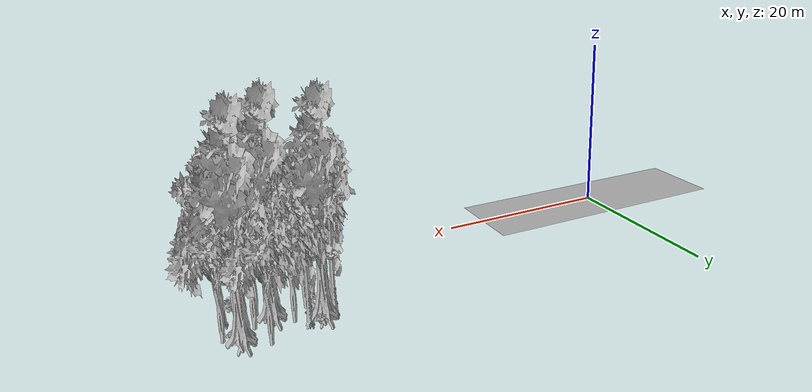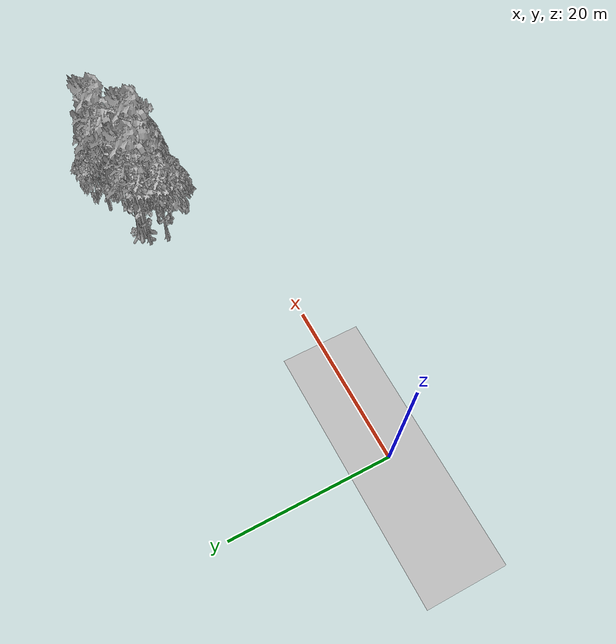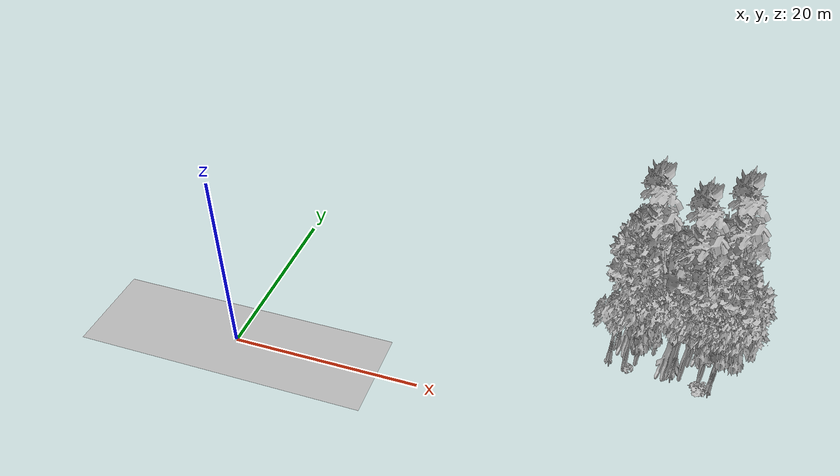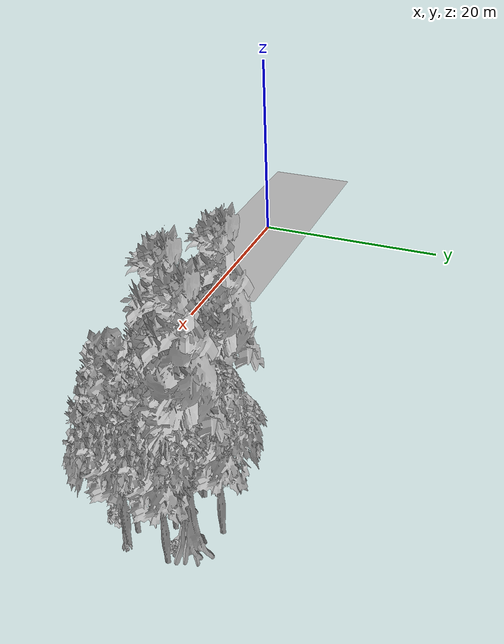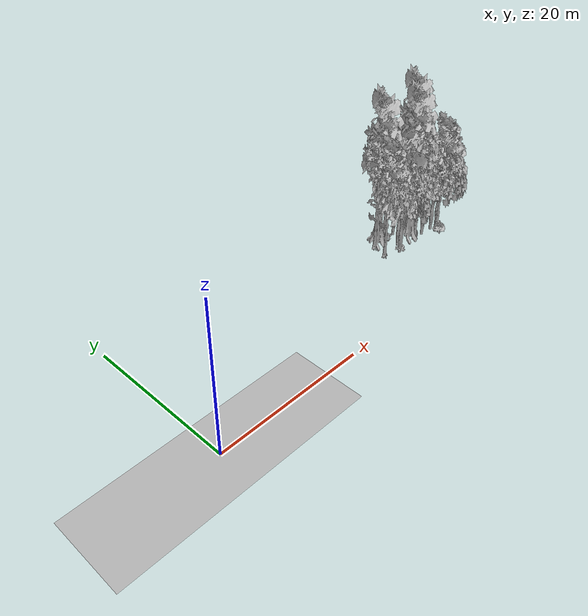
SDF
<sdf version="1.7">
 <world name="default">
  <model name="ground_plane">
   <static>1</static>
   <link name="link">
    <collision name="collision">
     <geometry><plane><normal>0 0 1</normal><size>100 100</size></plane></geometry>
     <surface><contact><ode><min_depth>0.01</min_depth><max_vel>0</max_vel></ode></contact></surface>
    </collision>
    <visual name="grass">
     <cast_shadows>0</cast_shadows>
     <geometry>
      <mesh>
       <scale>0.5814285714285714 0.18142857142857144 0.1</scale>
       <uri>file://grass_plane/meshes/grass_plane.dae</uri>
      </mesh>
     </geometry>
    </visual>
   </link>
  </model>
  <model name="Tree 15">
   <static>1</static>
   <pose>38.212332978538186 12.092679831336667 0 1.57079 -0 0</pose>
   <link name="link">
    <collision name="collision">
     <geometry><mesh><scale>3.5 5 3.5</scale><uri>model://tree_9/meshes/tree_9.obj</uri></mesh></geometry>
    </collision>
    <visual name="visual">
     <geometry><mesh><scale>3.5 5 3.5</scale><uri>model://tree_9/meshes/tree_9.obj</uri></mesh></geometry>
    </visual>
   </link>
  </model>
  <model name="Tree 74">
   <static>1</static>
   <pose>44.651377845256235 14.704984684509991 0 1.57079 -0 0</pose>
   <link name="link">
    <collision name="collision">
     <geometry><mesh><scale>3.5 5 3.5</scale><uri>model://tree_2/meshes/tree_2.obj</uri></mesh></geometry>
    </collision>
    <visual name="visual">
     <geometry><mesh><scale>3.5 5 3.5</scale><uri>model://tree_2/meshes/tree_2.obj</uri></mesh></geometry>
    </visual>
   </link>
  </model>
  <model name="Tree 75">
   <static>1</static>
   <pose>47.712248504179215 8.98684907318377 0 1.57079 -0 0</pose>
   <link name="link">
    <collision name="collision">
     <geometry><mesh><scale>3.5 5 3.5</scale><uri>model://tree_2/meshes/tree_2.obj</uri></mesh></geometry>
    </collision>
    <visual name="visual">
     <geometry><mesh><scale>3.5 5 3.5</scale><uri>model://tree_2/meshes/tree_2.obj</uri></mesh></geometry>
    </visual>
   </link>
  </model>
  <model name="Tree 97">
   <static>1</static>
   <pose>44.726109113990816 9.156099396153753 0 1.57079 -0 0</pose>
   <link name="link">
    <collision name="collision">
     <geometry><mesh><scale>3.5 5 3.5</scale><uri>model://tree_2/meshes/tree_2.obj</uri></mesh></geometry>
    </collision>
    <visual name="visual">
     <geometry><mesh><scale>3.5 5 3.5</scale><uri>model://tree_2/meshes/tree_2.obj</uri></mesh></geometry>
    </visual>
   </link>
  </model>
  <model name="Tree 98">
   <static>1</static>
   <pose>43.93550084644063 9.656852858181495 0 1.57079 -0 0</pose>
   <link name="link">
    <collision name="collision">
     <geometry><mesh><scale>3.5 5 3.5</scale><uri>model://tree_9/meshes/tree_9.obj</uri></mesh></geometry>
    </collision>
    <visual name="visual">
     <geometry><mesh><scale>3.5 5 3.5</scale><uri>model://tree_9/meshes/tree_9.obj</uri></mesh></geometry>
    </visual>
   </link>
  </model>
  <model name="Tree 109">
   <static>1</static>
   <pose>39.258221284310764 12.459212719771951 0 1.57079 -0 0</pose>
   <link name="link">
    <collision name="collision">
     <geometry><mesh><scale>3.5 5 3.5</scale><uri>model://tree_4/meshes/tree_4.obj</uri></mesh></geometry>
    </collision>
    <visual name="visual">
     <geometry><mesh><scale>3.5 5 3.5</scale><uri>model://tree_4/meshes/tree_4.obj</uri></mesh></geometry>
    </visual>
   </link>
  </model>
  <model name="Tree 114">
   <static>1</static>
   <pose>47.71526158773041 8.758357487531054 0 1.57079 -0 0</pose>
   <link name="link">
    <collision name="collision">
     <geometry><mesh><scale>3.5 5 3.5</scale><uri>model://tree_9/meshes/tree_9.obj</uri></mesh></geometry>
    </collision>
    <visual name="visual">
     <geometry><mesh><scale>3.5 5 3.5</scale><uri>model://tree_9/meshes/tree_9.obj</uri></mesh></geometry>
    </visual>
   </link>
  </model>
  <model name="Tree 178">
   <static>1</static>
   <pose>39.21001030998664 8.654247864778835 0 1.57079 -0 0</pose>
   <link name="link">
    <collision name="collision">
     <geometry><mesh><scale>3.5 5 3.5</scale><uri>model://tree_2/meshes/tree_2.obj</uri></mesh></geometry>
    </collision>
    <visual name="visual">
     <geometry><mesh><scale>3.5 5 3.5</scale><uri>model://tree_2/meshes/tree_2.obj</uri></mesh></geometry>
    </visual>
   </link>
  </model>
  <model name="Tree 229">
   <static>1</static>
   <pose>37.681247325063225 9.898228898737504 0 1.57079 -0 0</pose>
   <link name="link">
    <collision name="collision">
     <geometry><mesh><scale>3.5 5 3.5</scale><uri>model://tree_9/meshes/tree_9.obj</uri></mesh></geometry>
    </collision>
    <visual name="visual">
     <geometry><mesh><scale>3.5 5 3.5</scale><uri>model://tree_9/meshes/tree_9.obj</uri></mesh></geometry>
    </visual>
   </link>
  </model>
  <model name="Tree 256">
   <static>1</static>
   <pose>46.8415583597433 13.311435503027656 0 1.57079 -0 0</pose>
   <link name="link">
    <collision name="collision">
     <geometry><mesh><scale>3.5 5 3.5</scale><uri>model://tree_4/meshes/tree_4.obj</uri></mesh></geometry>
    </collision>
    <visual name="visual">
     <geometry><mesh><scale>3.5 5 3.5</scale><uri>model://tree_4/meshes/tree_4.obj</uri></mesh></geometry>
    </visual>
   </link>
  </model>
  <model name="Tree 278">
   <static>1</static>
   <pose>40.75267009435224 12.560265182950424 0 1.57079 -0 0</pose>
   <link name="link">
    <collision name="collision">
     <geometry><mesh><scale>3.5 5 3.5</scale><uri>model://tree_9/meshes/tree_9.obj</uri></mesh></geometry>
    </collision>
    <visual name="visual">
     <geometry><mesh><scale>3.5 5 3.5</scale><uri>model://tree_9/meshes/tree_9.obj</uri></mesh></geometry>
    </visual>
   </link>
  </model>
  <model name="Tree 309">
   <static>1</static>
   <pose>43.4818197570294 10.410119147956497 0 1.57079 -0 0</pose>
   <link name="link">
    <collision name="collision">
     <geometry><mesh><scale>3.5 5 3.5</scale><uri>model://tree_4/meshes/tree_4.obj</uri></mesh></geometry>
    </collision>
    <visual name="visual">
     <geometry><mesh><scale>3.5 5 3.5</scale><uri>model://tree_4/meshes/tree_4.obj</uri></mesh></geometry>
    </visual>
   </link>
  </model>
  <model name="Tree 310">
   <static>1</static>
   <pose>48.2996674348077 12.29774050552033 0 1.57079 -0 0</pose>
   <link name="link">
    <collision name="collision">
     <geometry><mesh><scale>3.5 5 3.5</scale><uri>model://tree_2/meshes/tree_2.obj</uri></mesh></geometry>
    </collision>
    <visual name="visual">
     <geometry><mesh><scale>3.5 5 3.5</scale><uri>model://tree_2/meshes/tree_2.obj</uri></mesh></geometry>
    </visual>
   </link>
  </model>
  <model name="Tree 328">
   <static>1</static>
   <pose>40.2633751082153 9.87335030765043 0 1.57079 -0 0</pose>
   <link name="link">
    <collision name="collision">
     <geometry><mesh><scale>3.5 5 3.5</scale><uri>model://tree_2/meshes/tree_2.obj</uri></mesh></geometry>
    </collision>
    <visual name="visual">
     <geometry><mesh><scale>3.5 5 3.5</scale><uri>model://tree_2/meshes/tree_2.obj</uri></mesh></geometry>
    </visual>
   </link>
  </model>
  <model name="Tree 378">
   <static>1</static>
   <pose>46.572999619190995 9.053427068486023 0 1.57079 -0 0</pose>
   <link name="link">
    <collision name="collision">
     <geometry><mesh><scale>3.5 5 3.5</scale><uri>model://tree_2/meshes/tree_2.obj</uri></mesh></geometry>
    </collision>
    <visual name="visual">
     <geometry><mesh><scale>3.5 5 3.5</scale><uri>model://tree_2/meshes/tree_2.obj</uri></mesh></geometry>
    </visual>
   </link>
  </model>
  <model name="Tree 412">
   <static>1</static>
   <pose>45.361456576186924 11.388661877351922 0 1.57079 -0 0</pose>
   <link name="link">
    <collision name="collision">
     <geometry><mesh><scale>3.5 5 3.5</scale><uri>model://tree_2/meshes/tree_2.obj</uri></mesh></geometry>
    </collision>
    <visual name="visual">
     <geometry><mesh><scale>3.5 5 3.5</scale><uri>model://tree_2/meshes/tree_2.obj</uri></mesh></geometry>
    </visual>
   </link>
  </model>
  <model name="Tree 431">
   <static>1</static>
   <pose>41.87748397163186 11.935744405663318 0 1.57079 -0 0</pose>
   <link name="link">
    <collision name="collision">
     <geometry><mesh><scale>3.5 5 3.5</scale><uri>model://tree_2/meshes/tree_2.obj</uri></mesh></geometry>
    </collision>
    <visual name="visual">
     <geometry><mesh><scale>3.5 5 3.5</scale><uri>model://tree_2/meshes/tree_2.obj</uri></mesh></geometry>
    </visual>
   </link>
  </model>
  <model name="Bush 8">
   <static>1</static>
   <pose>47.54955984210952 12.36193488490116 0 1.57079 -0 0</pose>
   <link name="link">
    <collision name="collision">
     <geometry><mesh><scale>2 2 2</scale><uri>model://bush_3/meshes/bush_3.obj</uri></mesh></geometry>
     <surface><contact><collide_without_contact>false</collide_without_contact></contact></surface>
    </collision>
    <visual name="visual">
     <geometry><mesh><scale>2 2 2</scale><uri>model://bush_3/meshes/bush_3.obj</uri></mesh></geometry>
    </visual>
   </link>
  </model>
  <model name="Bush 58">
   <static>1</static>
   <pose>39.6941376463773 8.80614821643276 0 1.57079 -0 0</pose>
   <link name="link">
    <collision name="collision">
     <geometry><mesh><scale>2 2 2</scale><uri>model://bush_3/meshes/bush_3.obj</uri></mesh></geometry>
     <surface><contact><collide_without_contact>false</collide_without_contact></contact></surface>
    </collision>
    <visual name="visual">
     <geometry><mesh><scale>2 2 2</scale><uri>model://bush_3/meshes/bush_3.obj</uri></mesh></geometry>
    </visual>
   </link>
  </model>
  <model name="Bush 183">
   <static>1</static>
   <pose>40.04850095141454 13.37219362478471 0 1.57079 -0 0</pose>
   <link name="link">
    <collision name="collision">
     <geometry><mesh><scale>2 2 2</scale><uri>model://bush_3/meshes/bush_3.obj</uri></mesh></geometry>
     <surface><contact><collide_without_contact>false</collide_without_contact></contact></surface>
    </collision>
    <visual name="visual">
     <geometry><mesh><scale>2 2 2</scale><uri>model://bush_3/meshes/bush_3.obj</uri></mesh></geometry>
    </visual>
   </link>
  </model>
  <model name="Bush 195">
   <static>1</static>
   <pose>46.59577663074647 7.426544474937412 0 1.57079 -0 0</pose>
   <link name="link">
    <collision name="collision">
     <geometry><mesh><scale>2 2 2</scale><uri>model://bush_1/meshes/bush_1.obj</uri></mesh></geometry>
     <surface><contact><collide_without_contact>false</collide_without_contact></contact></surface>
    </collision>
    <visual name="visual">
     <geometry><mesh><scale>2 2 2</scale><uri>model://bush_1/meshes/bush_1.obj</uri></mesh></geometry>
    </visual>
   </link>
  </model>
  <model name="Bush 322">
   <static>1</static>
   <pose>46.45135482828812 12.506162127889805 0 1.57079 -0 0</pose>
   <link name="link">
    <collision name="collision">
     <geometry><mesh><scale>2 2 2</scale><uri>model://bush_2/meshes/bush_2.obj</uri></mesh></geometry>
     <surface><contact><collide_without_contact>false</collide_without_contact></contact></surface>
    </collision>
    <visual name="visual">
     <geometry><mesh><scale>2 2 2</scale><uri>model://bush_2/meshes/bush_2.obj</uri></mesh></geometry>
    </visual>
   </link>
  </model>
  <model name="Bush 329">
   <static>1</static>
   <pose>40.176555870334624 11.346895500479079 0 1.57079 -0 0</pose>
   <link name="link">
    <collision name="collision">
     <geometry><mesh><scale>2 2 2</scale><uri>model://bush_4/meshes/bush_4.obj</uri></mesh></geometry>
     <surface><contact><collide_without_contact>false</collide_without_contact></contact></surface>
    </collision>
    <visual name="visual">
     <geometry><mesh><scale>2 2 2</scale><uri>model://bush_4/meshes/bush_4.obj</uri></mesh></geometry>
    </visual>
   </link>
  </model>
 </world>
</sdf>
